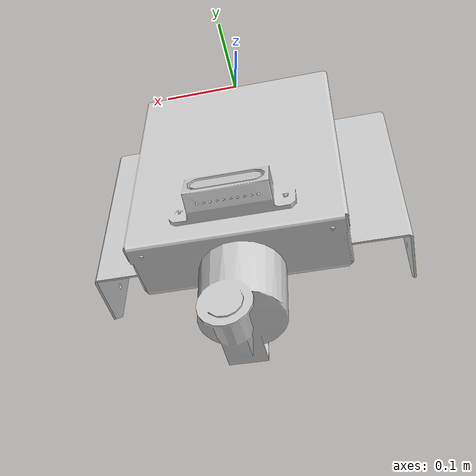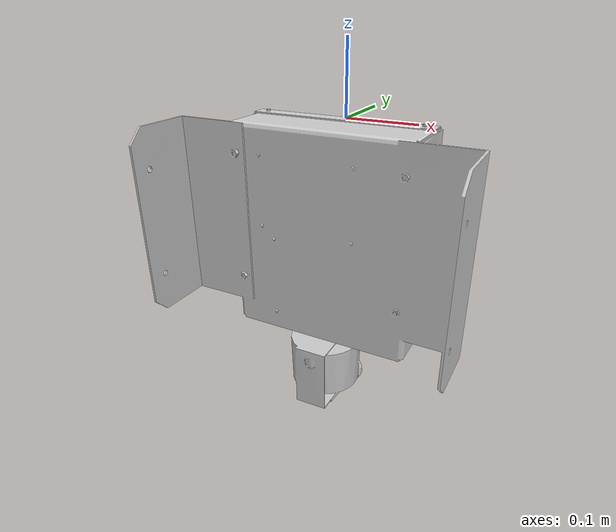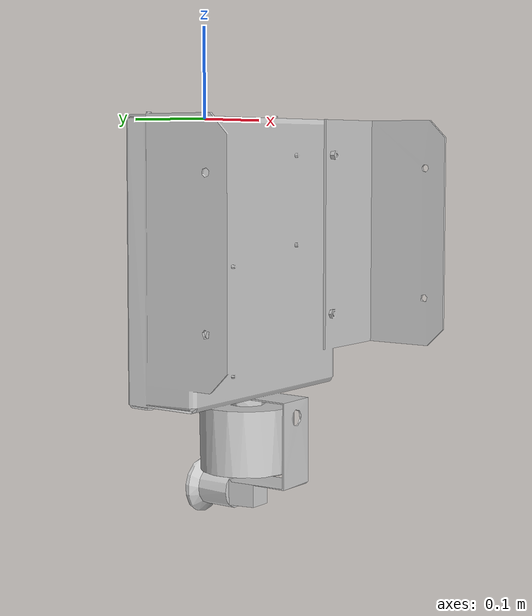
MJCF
<!-- box.xml -->

<mujoco model="box">
  <compiler meshdir="assets" />
  <visual>
    <global azimuth="90" elevation="-90"/>
  </visual>
  <default>
    <default class="box">
      <material specular="0.3" shininess="0.8"/>
      <default class="visual">
        <geom type="mesh" contype="0" conaffinity="0"/>
      </default>
      <default class="collision">
        <geom type="mesh" solref="0.02 1" solimp="0.95 0.99 0.001"/>
      </default>
    </default>
  </default>
  <asset>
    <material name="box_material" rgba="0.8 0.8 0.8 1"/>
    <mesh name="box_mesh" file="box.obj" scale="1 1 1"/>
  </asset>
  <worldbody>
    <body name="box_body" childclass="box" pos="0 0 0">
      <inertial pos="0 0 0" mass="30" diaginertia="0.01 0.01 0.01"/>
      <geom mesh="box_mesh" material="box_material" class="visual"/>
      <!--geom mesh="box_mesh" material="box_material" class="collision"/-->
    </body>
  </worldbody>
</mujoco>
